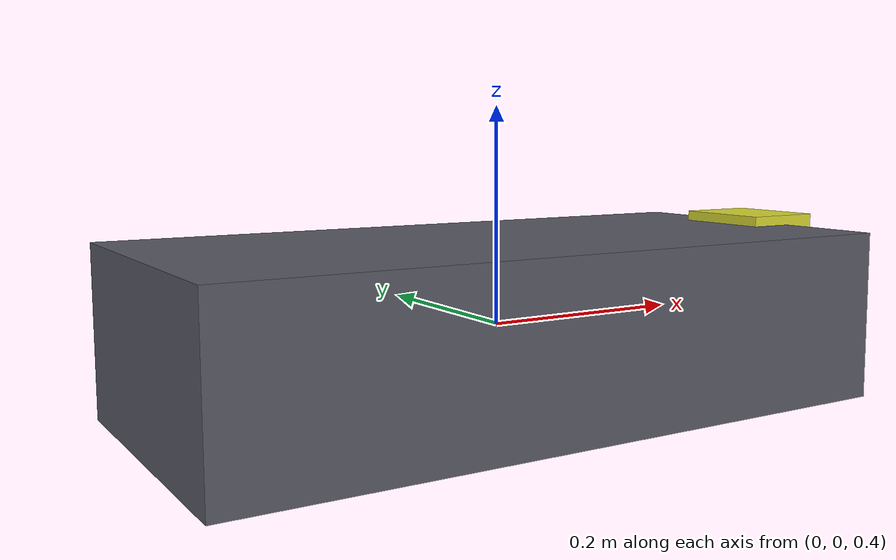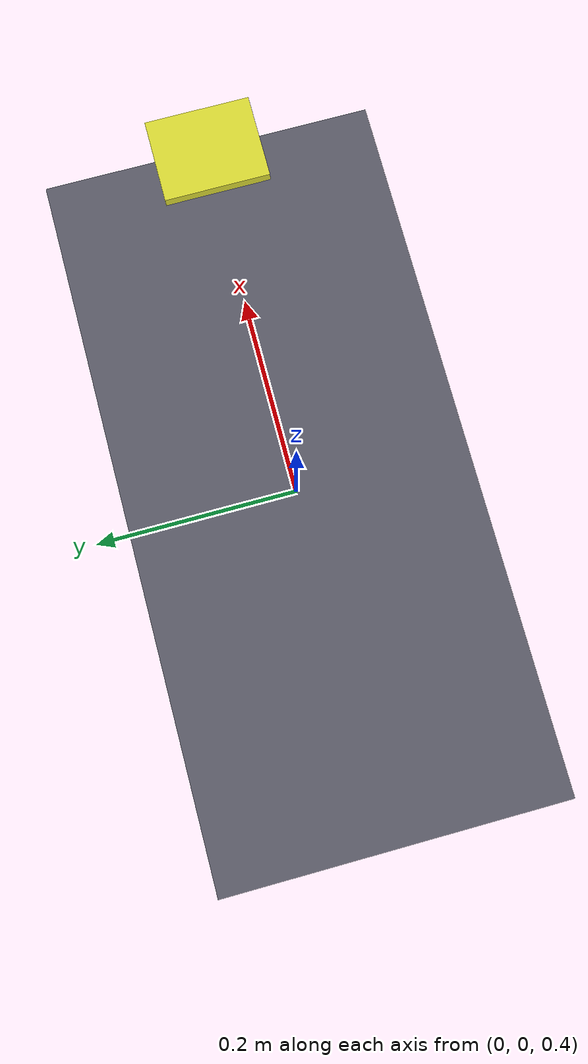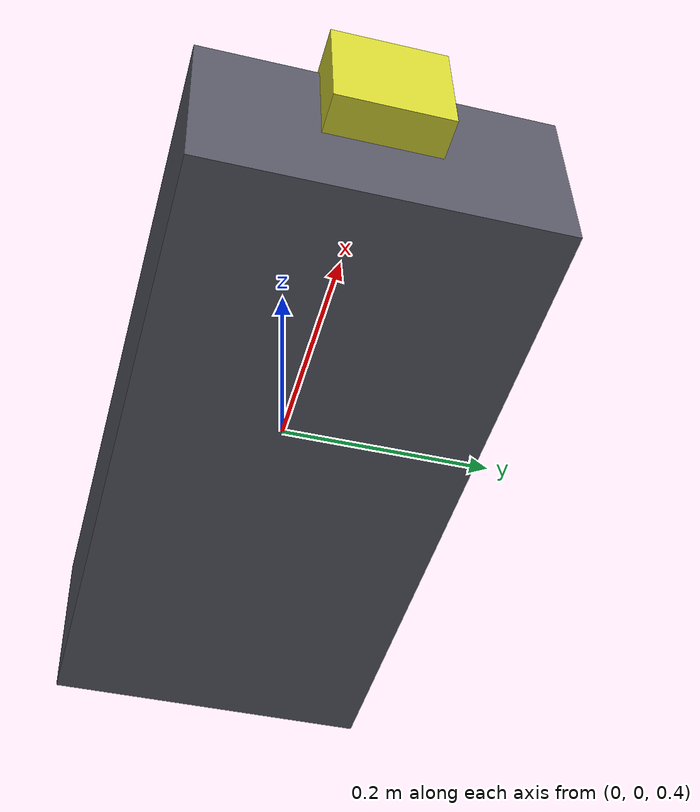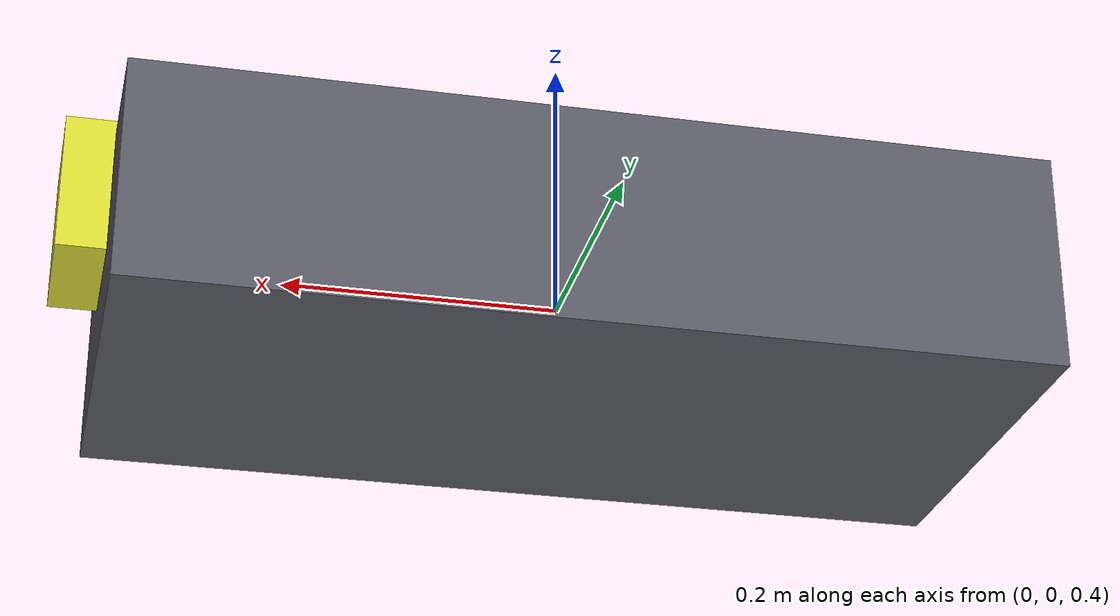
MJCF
<mujoco model="go2_proxy">
  <compiler angle="radian"/>
  <option timestep="0.005"/>

  <worldbody>
    <body name="base_link" pos="0 0 0.40">
      <inertial pos="0 0 0" mass="12.0" diaginertia="0.05 0.18 0.20"/>
      <joint name="floating_base_joint" type="free" limited="false" actuatorfrclimited="false"/>
      <geom name="body" type="box" size="0.325 0.155 0.080"
            rgba="0.35 0.35 0.40 1" contype="0" conaffinity="0" group="1" density="0"/>
      <geom name="head" type="box" size="0.04 0.05 0.05" pos="0.32 0 0.04"
            rgba="0.85 0.85 0.20 1" contype="0" conaffinity="0" group="1" density="0"/>
    </body>
  </worldbody>
</mujoco>
